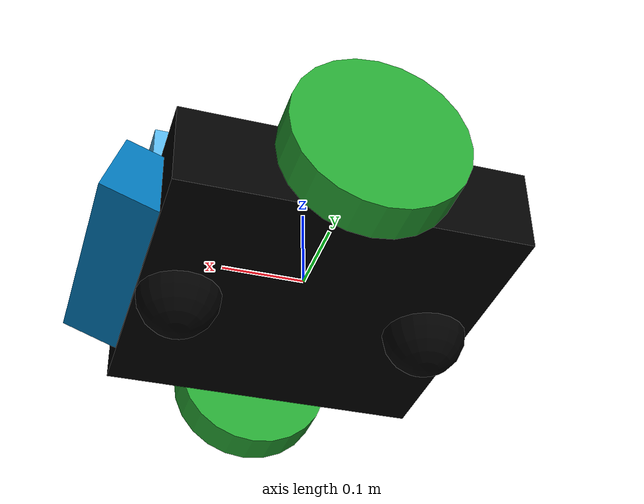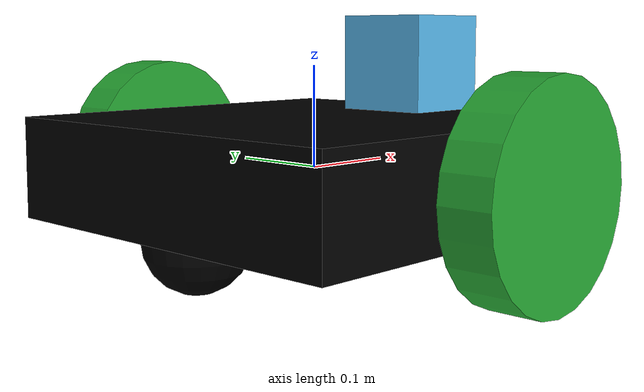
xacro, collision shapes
<?xml version='1.0'?>

<robot name="fouliex_bot" xmlns:xacro="http://www.ros.org/wiki/xacro">
    <xacro:include filename="$(find fouliex_bot)/urdf/fouliex_bot.gazebo"/>
    <link name="robot_footprint"></link>

    <joint name="robot_footprint_joint" type="fixed">
        <origin xyz="0 0 0" rpy="0 0 0"/>
        <parent link="robot_footprint"/>
        <child link="chassis"/>
    </joint>

    <!-- Chassis Link -->

    <link name='chassis'>
        <pose>0 0 0.1 0 0 0</pose>

        <inertial>
            <mass value="15.0"/>
            <origin xyz="0.0 0 0" rpy=" 0 0 0"/>
            <inertia ixx="0.1" ixy="0" ixz="0" iyy="0.1" iyz="0" izz="0.1"/>
        </inertial>

        <collision name='collision'>
            <origin xyz="0 0 0" rpy=" 0 0 0"/>
            <geometry>
                <box size=".4 .4 .1"/>
            </geometry>
        </collision>

        <visual name='chassis_visual'>
            <origin xyz="0 0 0" rpy=" 0 0 0"/>
            <geometry>
                <box size=".4 .4 .1"/>
            </geometry>
            <material name="black">
                <color rgba="0 0 0 1"/>
            </material>
        </visual>

        <collision name='back_caster_collision'>
            <origin xyz="-0.15 0 -0.05" rpy=" 0 0 0"/>
            <geometry>
                <sphere radius="0.05"/>
            </geometry>
            <surface>
                <friction>
                    <ode>
                        <mu>0</mu>
                        <mu2>0</mu2>
                        <slip1>1.0</slip1>
                        <slip2>1.0</slip2>
                    </ode>
                </friction>
            </surface>
        </collision>

        <visual name='back_caster_visual'>
            <origin xyz="-0.15 0 -0.05" rpy=" 0 0 0"/>
            <geometry>
                <sphere radius="0.05"/>
            </geometry>
        </visual>

        <collision name='front_caster_collision'>
            <origin xyz="0.15 0 -0.05" rpy=" 0 0 0"/>
            <geometry>
                <sphere radius="0.05"/>
            </geometry>
            <surface>
                <friction>
                    <ode>
                        <mu>0</mu>
                        <mu2>0</mu2>
                        <slip1>1.0</slip1>
                        <slip2>1.0</slip2>
                    </ode>
                </friction>
            </surface>
        </collision>

        <visual name='front_caster_visual'>
            <origin xyz="0.15 0 -0.05" rpy=" 0 0 0"/>
            <geometry>
                <sphere radius="0.05"/>
            </geometry>
        </visual>

    </link>

    <!-- Left Wheel Link -->

    <link name='left_wheel'>
        <inertial>
            <mass value="5.0"/>
            <origin xyz="0.0 0 0" rpy=" 0 1.5707 1.5707"/>
            <inertia ixx="0.1" ixy="0" ixz="0" iyy="0.1" iyz="0" izz="0.1"/>
        </inertial>

        <collision name='collision'>
            <origin xyz="0.0 0 0" rpy=" 0 1.5707 1.5707"/>
            <geometry>
                <cylinder length="0.05" radius="0.1"/>
            </geometry>
        </collision>

        <visual name='wheel_visual'>
            <origin xyz="0.0 0 0" rpy=" 0 1.5707 1.5707"/>
            <geometry>
                <cylinder length="0.05" radius="0.1"/>
            </geometry>
        </visual>
    </link>

    <!-- Right Wheel Link -->

    <link name='right_wheel'>
        <inertial>
            <mass value="5.0"/>
            <origin xyz="0.0 0 0" rpy=" 0 1.5707 1.5707"/>
            <inertia ixx="0.1" ixy="0" ixz="0" iyy="0.1" iyz="0" izz="0.1"/>
        </inertial>

        <collision name='collision'>
            <origin xyz="0.0 0 0" rpy=" 0 1.5707 1.5707"/>
            <geometry>
                <cylinder length="0.05" radius="0.1"/>
            </geometry>
        </collision>

        <visual name='wheel_visual'>
            <origin xyz="0.0 0 0" rpy=" 0 1.5707 1.5707"/>
            <geometry>
                <cylinder length="0.05" radius="0.1"/>
            </geometry>
        </visual>
    </link>

    <!-- Left and Right Wheel Joints -->
    <joint type="continuous" name="left_wheel_hinge">
        <origin xyz="0.0 0.25 0" rpy="0 0 0"/>
        <child link="left_wheel"/>
        <parent link="chassis"/>
        <axis xyz="0 1 0" rpy="0 0 0"/>
        <limit effort="10000" velocity="1000"/>
        <joint_properties damping="1.0" friction="1.0"/>
    </joint>

    <joint type="continuous" name="right_wheel_hinge">
        <origin xyz="0 -0.25 0" rpy="0 0 0"/>
        <child link="right_wheel"/>
        <parent link="chassis"/>
        <axis xyz="0 1 0" rpy="0 0 0"/>
        <limit effort="10000" velocity="1000"/>
        <joint_properties damping="1.0" friction="1.0"/>
    </joint>

    <!-- Camera Link -->

    <link name="camera">
        <inertial>
            <mass value="0.01" />
            <origin xyz="0 0 0" />
            <inertia ixx="0.001" ixy="0.0" ixz="0.0"
                     iyy="0.001" iyz="0.0"
                     izz="0.001" />
        </inertial>

        <visual>
            <origin xyz=" 0 0 0 " rpy="0 0 0" />
            <geometry>
                <mesh filename="package://fouliex_bot/meshes/kinect.dae"/>
            </geometry>
        </visual>

        <collision>
            <origin xyz="0.0 0.0 0.0" rpy="0 0 0" />
            <geometry>
                <box size="0.0730 .2760 0.0720"/>
            </geometry>
        </collision>

    </link>

    <joint name="camera_depth_joint" type="fixed">
        <origin xyz="0 0.011 0" rpy="0 0 0" />
        <parent link="camera" />
        <child link="camera_depth_frame" />
    </joint>
    <link name="camera_depth_frame">
        <inertial>
            <mass value="0.01" />
            <origin xyz="0 0 0" />
            <inertia ixx="0.001" ixy="0.0" ixz="0.0"
                     iyy="0.001" iyz="0.0"
                     izz="0.001" />
        </inertial>
    </link>

    <joint name="camera_depth_optical_joint" type="fixed">
        <origin xyz="0 0 0" rpy="-1.57 0 -1.57" />
        <parent link="camera_depth_frame" />
        <child link="camera_depth_optical_frame" />
    </joint>

    <link name="camera_depth_optical_frame">
        <inertial>
            <mass value="0.001" />
            <origin xyz="0 0 0" />
            <inertia ixx="0.0001" ixy="0.0" ixz="0.0"
                     iyy="0.0001" iyz="0.0"
                     izz="0.0001" />
        </inertial>
    </link>

    <joint name="camera_rgb_joint" type="fixed">
        <origin xyz="0 -0.012 0" rpy="0 0 0" />
        <parent link="camera" />
        <child link="camera_rgb_frame" />
    </joint>

    <link name="camera_rgb_frame">
        <inertial>
            <mass value="0.001" />
            <origin xyz="0 0 0" />
            <inertia ixx="0.0001" ixy="0.0" ixz="0.0"
                     iyy="0.0001" iyz="0.0"
                     izz="0.0001" />
        </inertial>
    </link>

    <joint name="camera_rgb_optical_joint" type="fixed">
        <origin xyz="0 0 0" rpy="-1.57 0 -1.57" />
        <parent link="camera_rgb_frame" />
        <child link="camera_rgb_optical_frame" />
    </joint>

    <link name="camera_rgb_optical_frame">
        <inertial>
            <mass value="0.001" />
            <origin xyz="0 0 0" />
            <inertia ixx="0.0001" ixy="0.0" ixz="0.0"
                     iyy="0.0001" iyz="0.0"
                     izz="0.0001" />
        </inertial>
    </link>

    <!-- Camera Joint -->
    <joint name="base_camera_joint" type="fixed">
        <origin xyz="0.22 0 0" rpy="0 -0.349 0" />
        <parent link="chassis" />
        <child link="camera" />
    </joint>

    <!-- Laser RangeFinder(hokuyo) Link -->

    <link name="hokuyo">

        <inertial>
            <mass value="0.1"/>
            <origin xyz="0 0 0" rpy="0 0 0"/>
            <inertia
                    ixx="1e-6" ixy="0" ixz="0"
                    iyy="1e-6" iyz="0"
                    izz="1e-6"
            />
        </inertial>
        <visual>
            <geometry>
                <mesh filename="package://fouliex_bot/meshes/hokuyo.dae"/>
            </geometry>
            <origin xyz="0 0 0" rpy="0 0 0"/>
        </visual>
        <collision>
            <geometry>
                <box size="0.1 0.1 0.1"/>
            </geometry>
            <origin xyz="0 0 0" rpy="0 0 0"/>
        </collision>
    </link>

    <!-- Laser RangeFinder(hokuyo) Link -->
    <joint type="fixed" name="hokuyo_joint">
        <origin xyz="0.15 0 0.1" rpy="0 0 0"/>
        <child link="hokuyo"/>
        <parent link="chassis"/>
    </joint>

</robot>
